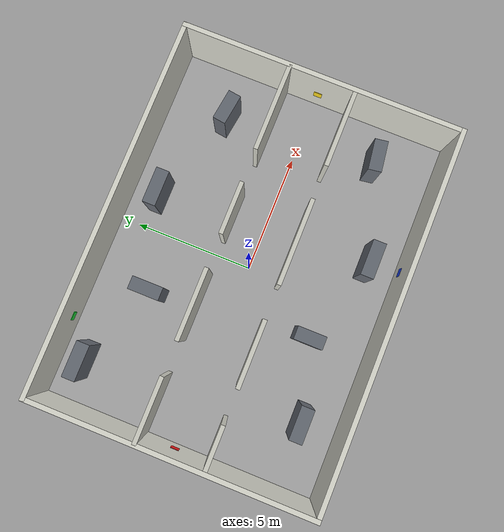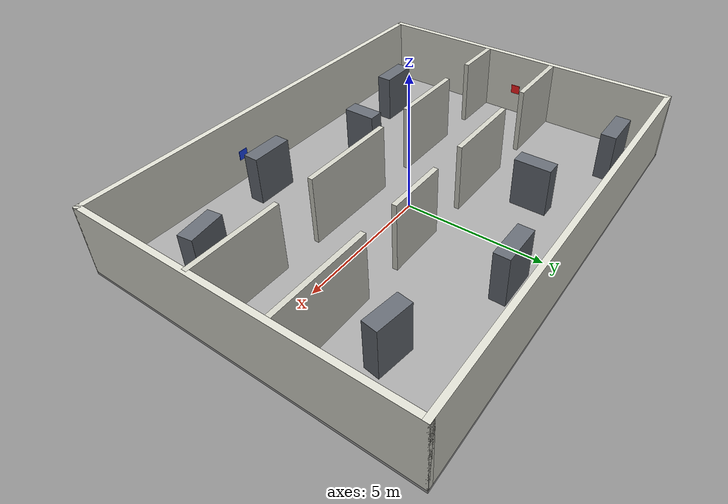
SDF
<?xml version='1.0' encoding='utf-8'?>
<sdf version="1.10">
  <!--Generated from scene.yaml; edit the specification, not this file.-->
  <world name="dev_corridor_01">
    <physics name="physics" type="ignored">
      <max_step_size>0.004</max_step_size>
      <real_time_factor>1.0</real_time_factor>
      <real_time_update_rate>250</real_time_update_rate>
    </physics>
    <gravity>0 0 -9.81</gravity>
    <scene>
      <ambient>0.35 0.35 0.38 1</ambient>
      <background>0.72 0.78 0.86 1</background>
      <shadows>true</shadows>
    </scene>
    <plugin filename="gz-sim-physics-system" name="gz::sim::systems::Physics" />
    <plugin filename="gz-sim-user-commands-system" name="gz::sim::systems::UserCommands" />
    <plugin filename="gz-sim-scene-broadcaster-system" name="gz::sim::systems::SceneBroadcaster" />
    <plugin filename="gz-sim-sensors-system" name="gz::sim::systems::Sensors">
      <render_engine>ogre2</render_engine>
    </plugin>
    <plugin filename="gz-sim-imu-system" name="gz::sim::systems::Imu" />
    <plugin filename="gz-sim-contact-system" name="gz::sim::systems::Contact" />
    <light name="sun" type="directional">
      <cast_shadows>true</cast_shadows>
      <pose>0 0 10 0 0 0</pose>
      <diffuse>0.85 0.85 0.85 1</diffuse>
      <specular>0.2 0.2 0.2 1</specular>
      <attenuation>
        <range>1000</range>
        <constant>0.9</constant>
        <linear>0.01</linear>
        <quadratic>0.001</quadratic>
      </attenuation>
      <direction>-0.4 0.2 -0.9</direction>
    </light>
    <model name="floor">
      <static>true</static>
      <pose>0 0 -0.05 0 0 0</pose>
      <link name="body">
        <collision name="collision">
          <geometry>
            <box>
              <size>16 12 0.1</size>
            </box>
          </geometry>
        </collision>
        <visual name="visual">
          <geometry>
            <box>
              <size>16 12 0.1</size>
            </box>
          </geometry>
          <material>
            <ambient>0.58 0.58 0.58 1</ambient>
            <diffuse>0.667 0.667 0.667 1</diffuse>
          </material>
        </visual>
      </link>
    </model>
    <model name="wall_north">
      <static>true</static>
      <pose>0 5.9 1.25 0 0 0</pose>
      <link name="body">
        <collision name="collision">
          <geometry>
            <box>
              <size>16 0.2 2.5</size>
            </box>
          </geometry>
        </collision>
        <visual name="visual">
          <geometry>
            <box>
              <size>16 0.2 2.5</size>
            </box>
          </geometry>
          <material>
            <ambient>0.76 0.76 0.72 1</ambient>
            <diffuse>0.874 0.874 0.828 1</diffuse>
          </material>
        </visual>
      </link>
    </model>
    <model name="wall_south">
      <static>true</static>
      <pose>0 -5.9 1.25 0 0 0</pose>
      <link name="body">
        <collision name="collision">
          <geometry>
            <box>
              <size>16 0.2 2.5</size>
            </box>
          </geometry>
        </collision>
        <visual name="visual">
          <geometry>
            <box>
              <size>16 0.2 2.5</size>
            </box>
          </geometry>
          <material>
            <ambient>0.76 0.76 0.72 1</ambient>
            <diffuse>0.874 0.874 0.828 1</diffuse>
          </material>
        </visual>
      </link>
    </model>
    <model name="wall_west">
      <static>true</static>
      <pose>-7.9 0 1.25 0 0 0</pose>
      <link name="body">
        <collision name="collision">
          <geometry>
            <box>
              <size>0.2 12 2.5</size>
            </box>
          </geometry>
        </collision>
        <visual name="visual">
          <geometry>
            <box>
              <size>0.2 12 2.5</size>
            </box>
          </geometry>
          <material>
            <ambient>0.76 0.76 0.72 1</ambient>
            <diffuse>0.874 0.874 0.828 1</diffuse>
          </material>
        </visual>
      </link>
    </model>
    <model name="wall_east">
      <static>true</static>
      <pose>7.9 0 1.25 0 0 0</pose>
      <link name="body">
        <collision name="collision">
          <geometry>
            <box>
              <size>0.2 12 2.5</size>
            </box>
          </geometry>
        </collision>
        <visual name="visual">
          <geometry>
            <box>
              <size>0.2 12 2.5</size>
            </box>
          </geometry>
          <material>
            <ambient>0.76 0.76 0.72 1</ambient>
            <diffuse>0.874 0.874 0.828 1</diffuse>
          </material>
        </visual>
      </link>
    </model>
    <model name="wall_corridor_n_1">
      <static>true</static>
      <pose>-6.55 1.4 1.25 0 0 0</pose>
      <link name="body">
        <collision name="collision">
          <geometry>
            <box>
              <size>2.7 0.18 2.5</size>
            </box>
          </geometry>
        </collision>
        <visual name="visual">
          <geometry>
            <box>
              <size>2.7 0.18 2.5</size>
            </box>
          </geometry>
          <material>
            <ambient>0.72 0.72 0.68 1</ambient>
            <diffuse>0.828 0.828 0.782 1</diffuse>
          </material>
        </visual>
      </link>
    </model>
    <model name="wall_corridor_n_2">
      <static>true</static>
      <pose>-2.3 1.4 1.25 0 0 0</pose>
      <link name="body">
        <collision name="collision">
          <geometry>
            <box>
              <size>3 0.18 2.5</size>
            </box>
          </geometry>
        </collision>
        <visual name="visual">
          <geometry>
            <box>
              <size>3 0.18 2.5</size>
            </box>
          </geometry>
          <material>
            <ambient>0.72 0.72 0.68 1</ambient>
            <diffuse>0.828 0.828 0.782 1</diffuse>
          </material>
        </visual>
      </link>
    </model>
    <model name="wall_corridor_n_3">
      <static>true</static>
      <pose>1.7 1.4 1.25 0 0 0</pose>
      <link name="body">
        <collision name="collision">
          <geometry>
            <box>
              <size>2.2 0.18 2.5</size>
            </box>
          </geometry>
        </collision>
        <visual name="visual">
          <geometry>
            <box>
              <size>2.2 0.18 2.5</size>
            </box>
          </geometry>
          <material>
            <ambient>0.72 0.72 0.68 1</ambient>
            <diffuse>0.828 0.828 0.782 1</diffuse>
          </material>
        </visual>
      </link>
    </model>
    <model name="wall_corridor_n_4">
      <static>true</static>
      <pose>6.05 1.4 1.25 0 0 0</pose>
      <link name="body">
        <collision name="collision">
          <geometry>
            <box>
              <size>3.7 0.18 2.5</size>
            </box>
          </geometry>
        </collision>
        <visual name="visual">
          <geometry>
            <box>
              <size>3.7 0.18 2.5</size>
            </box>
          </geometry>
          <material>
            <ambient>0.72 0.72 0.68 1</ambient>
            <diffuse>0.828 0.828 0.782 1</diffuse>
          </material>
        </visual>
      </link>
    </model>
    <model name="wall_corridor_s_1">
      <static>true</static>
      <pose>-6.95 -1.4 1.25 0 0 0</pose>
      <link name="body">
        <collision name="collision">
          <geometry>
            <box>
              <size>1.9 0.18 2.5</size>
            </box>
          </geometry>
        </collision>
        <visual name="visual">
          <geometry>
            <box>
              <size>1.9 0.18 2.5</size>
            </box>
          </geometry>
          <material>
            <ambient>0.72 0.72 0.68 1</ambient>
            <diffuse>0.828 0.828 0.782 1</diffuse>
          </material>
        </visual>
      </link>
    </model>
    <model name="wall_corridor_s_2">
      <static>true</static>
      <pose>-3.2 -1.4 1.25 0 0 0</pose>
      <link name="body">
        <collision name="collision">
          <geometry>
            <box>
              <size>2.8 0.18 2.5</size>
            </box>
          </geometry>
        </collision>
        <visual name="visual">
          <geometry>
            <box>
              <size>2.8 0.18 2.5</size>
            </box>
          </geometry>
          <material>
            <ambient>0.72 0.72 0.68 1</ambient>
            <diffuse>0.828 0.828 0.782 1</diffuse>
          </material>
        </visual>
      </link>
    </model>
    <model name="wall_corridor_s_3">
      <static>true</static>
      <pose>1.4 -1.4 1.25 0 0 0</pose>
      <link name="body">
        <collision name="collision">
          <geometry>
            <box>
              <size>3.6 0.18 2.5</size>
            </box>
          </geometry>
        </collision>
        <visual name="visual">
          <geometry>
            <box>
              <size>3.6 0.18 2.5</size>
            </box>
          </geometry>
          <material>
            <ambient>0.72 0.72 0.68 1</ambient>
            <diffuse>0.828 0.828 0.782 1</diffuse>
          </material>
        </visual>
      </link>
    </model>
    <model name="wall_corridor_s_4">
      <static>true</static>
      <pose>6.25 -1.4 1.25 0 0 0</pose>
      <link name="body">
        <collision name="collision">
          <geometry>
            <box>
              <size>3.3 0.18 2.5</size>
            </box>
          </geometry>
        </collision>
        <visual name="visual">
          <geometry>
            <box>
              <size>3.3 0.18 2.5</size>
            </box>
          </geometry>
          <material>
            <ambient>0.72 0.72 0.68 1</ambient>
            <diffuse>0.828 0.828 0.782 1</diffuse>
          </material>
        </visual>
      </link>
    </model>
    <model name="cabinet_n_01">
      <static>true</static>
      <pose>-6 4.8 0.9 0 0 0</pose>
      <link name="body">
        <collision name="collision">
          <geometry>
            <box>
              <size>1.5 0.55 1.8</size>
            </box>
          </geometry>
        </collision>
        <visual name="visual">
          <geometry>
            <box>
              <size>1.5 0.55 1.8</size>
            </box>
          </geometry>
          <material>
            <ambient>0.35 0.37 0.4 1</ambient>
            <diffuse>0.4025 0.4255 0.46 1</diffuse>
          </material>
        </visual>
      </link>
    </model>
    <model name="cabinet_n_02">
      <static>true</static>
      <pose>-2.4 3.4 0.9 0 0 1.57079633</pose>
      <link name="body">
        <collision name="collision">
          <geometry>
            <box>
              <size>1.3 0.55 1.8</size>
            </box>
          </geometry>
        </collision>
        <visual name="visual">
          <geometry>
            <box>
              <size>1.3 0.55 1.8</size>
            </box>
          </geometry>
          <material>
            <ambient>0.35 0.37 0.4 1</ambient>
            <diffuse>0.4025 0.4255 0.46 1</diffuse>
          </material>
        </visual>
      </link>
    </model>
    <model name="cabinet_n_03">
      <static>true</static>
      <pose>1.5 4.6 0.9 0 0 0</pose>
      <link name="body">
        <collision name="collision">
          <geometry>
            <box>
              <size>1.5 0.55 1.8</size>
            </box>
          </geometry>
        </collision>
        <visual name="visual">
          <geometry>
            <box>
              <size>1.5 0.55 1.8</size>
            </box>
          </geometry>
          <material>
            <ambient>0.35 0.37 0.4 1</ambient>
            <diffuse>0.4025 0.4255 0.46 1</diffuse>
          </material>
        </visual>
      </link>
    </model>
    <model name="cabinet_n_04">
      <static>true</static>
      <pose>5.6 3.2 0.9 0 0 -0.13962634</pose>
      <link name="body">
        <collision name="collision">
          <geometry>
            <box>
              <size>1.3 0.55 1.8</size>
            </box>
          </geometry>
        </collision>
        <visual name="visual">
          <geometry>
            <box>
              <size>1.3 0.55 1.8</size>
            </box>
          </geometry>
          <material>
            <ambient>0.35 0.37 0.4 1</ambient>
            <diffuse>0.4025 0.4255 0.46 1</diffuse>
          </material>
        </visual>
      </link>
    </model>
    <model name="cabinet_s_01">
      <static>true</static>
      <pose>-5 -4.2 0.9 0 0 0</pose>
      <link name="body">
        <collision name="collision">
          <geometry>
            <box>
              <size>1.4 0.55 1.8</size>
            </box>
          </geometry>
        </collision>
        <visual name="visual">
          <geometry>
            <box>
              <size>1.4 0.55 1.8</size>
            </box>
          </geometry>
          <material>
            <ambient>0.35 0.37 0.4 1</ambient>
            <diffuse>0.4025 0.4255 0.46 1</diffuse>
          </material>
        </visual>
      </link>
    </model>
    <model name="cabinet_s_02">
      <static>true</static>
      <pose>-1.8 -3.3 0.9 0 0 1.57079633</pose>
      <link name="body">
        <collision name="collision">
          <geometry>
            <box>
              <size>1.2 0.55 1.8</size>
            </box>
          </geometry>
        </collision>
        <visual name="visual">
          <geometry>
            <box>
              <size>1.2 0.55 1.8</size>
            </box>
          </geometry>
          <material>
            <ambient>0.35 0.37 0.4 1</ambient>
            <diffuse>0.4025 0.4255 0.46 1</diffuse>
          </material>
        </visual>
      </link>
    </model>
    <model name="cabinet_s_03">
      <static>true</static>
      <pose>2 -4.5 0.9 0 0 0</pose>
      <link name="body">
        <collision name="collision">
          <geometry>
            <box>
              <size>1.5 0.55 1.8</size>
            </box>
          </geometry>
        </collision>
        <visual name="visual">
          <geometry>
            <box>
              <size>1.5 0.55 1.8</size>
            </box>
          </geometry>
          <material>
            <ambient>0.35 0.37 0.4 1</ambient>
            <diffuse>0.4025 0.4255 0.46 1</diffuse>
          </material>
        </visual>
      </link>
    </model>
    <model name="cabinet_s_04">
      <static>true</static>
      <pose>6 -3.2 0.9 0 0 0.13962634</pose>
      <link name="body">
        <collision name="collision">
          <geometry>
            <box>
              <size>1.3 0.55 1.8</size>
            </box>
          </geometry>
        </collision>
        <visual name="visual">
          <geometry>
            <box>
              <size>1.3 0.55 1.8</size>
            </box>
          </geometry>
          <material>
            <ambient>0.35 0.37 0.4 1</ambient>
            <diffuse>0.4025 0.4255 0.46 1</diffuse>
          </material>
        </visual>
      </link>
    </model>
    <model name="target_panel_01">
      <static>true</static>
      <pose>-7.76 0 1.05 0 0 0</pose>
      <link name="body">
        <visual name="visual">
          <geometry>
            <box>
              <size>0.02 0.35 0.35</size>
            </box>
          </geometry>
          <material>
            <ambient>0.9 0.1 0.1 1</ambient>
            <diffuse>1 0.115 0.115 1</diffuse>
          </material>
        </visual>
      </link>
    </model>
    <model name="target_panel_02">
      <static>true</static>
      <pose>-4.5 5.76 1.05 0 0 -1.57079633</pose>
      <link name="body">
        <visual name="visual">
          <geometry>
            <box>
              <size>0.02 0.35 0.35</size>
            </box>
          </geometry>
          <material>
            <ambient>0.1 0.8 0.2 1</ambient>
            <diffuse>0.115 0.92 0.23 1</diffuse>
          </material>
        </visual>
      </link>
    </model>
    <model name="target_panel_03">
      <static>true</static>
      <pose>2 -5.76 1.05 0 0 1.57079633</pose>
      <link name="body">
        <visual name="visual">
          <geometry>
            <box>
              <size>0.02 0.35 0.35</size>
            </box>
          </geometry>
          <material>
            <ambient>0.1 0.25 0.9 1</ambient>
            <diffuse>0.115 0.2875 1 1</diffuse>
          </material>
        </visual>
      </link>
    </model>
    <model name="target_panel_04">
      <static>true</static>
      <pose>7.76 0 1.05 0 0 3.14159265</pose>
      <link name="body">
        <visual name="visual">
          <geometry>
            <box>
              <size>0.02 0.35 0.35</size>
            </box>
          </geometry>
          <material>
            <ambient>0.9 0.75 0.1 1</ambient>
            <diffuse>1 0.8625 0.115 1</diffuse>
          </material>
        </visual>
      </link>
    </model>
  </world>
</sdf>
